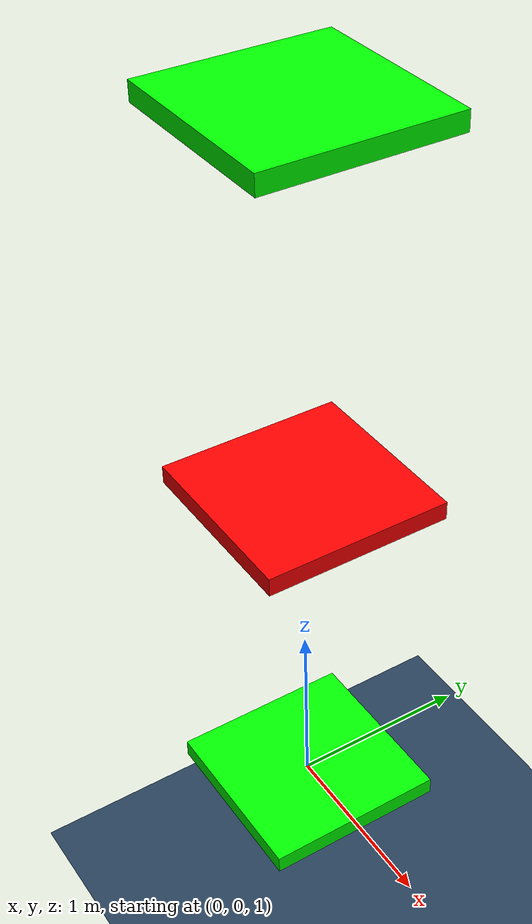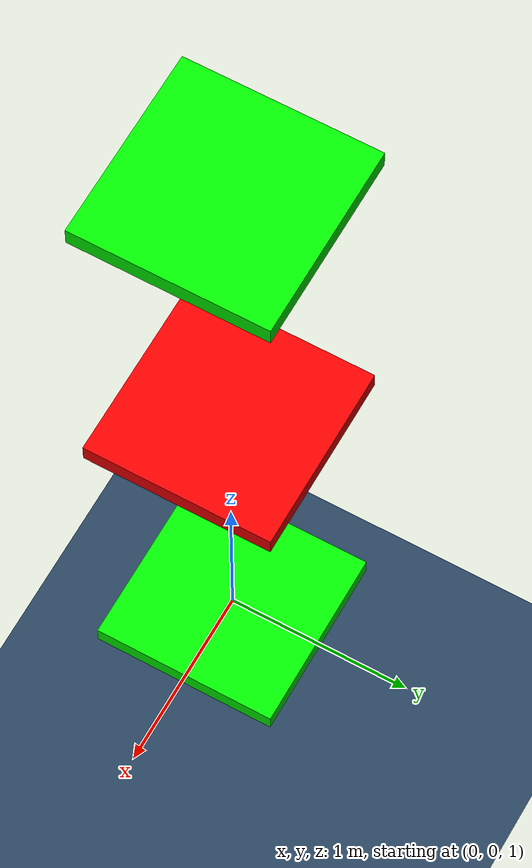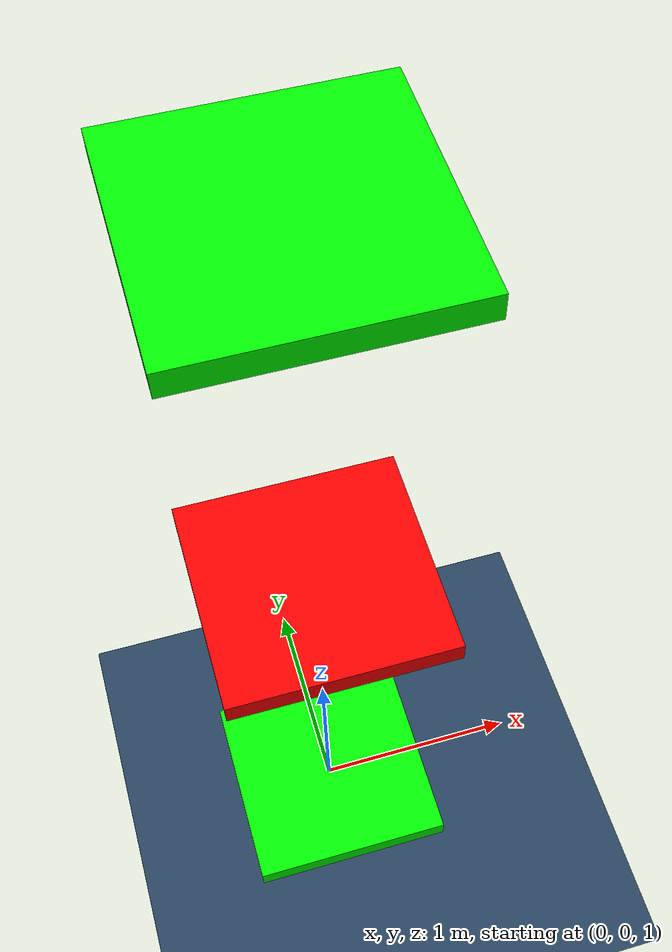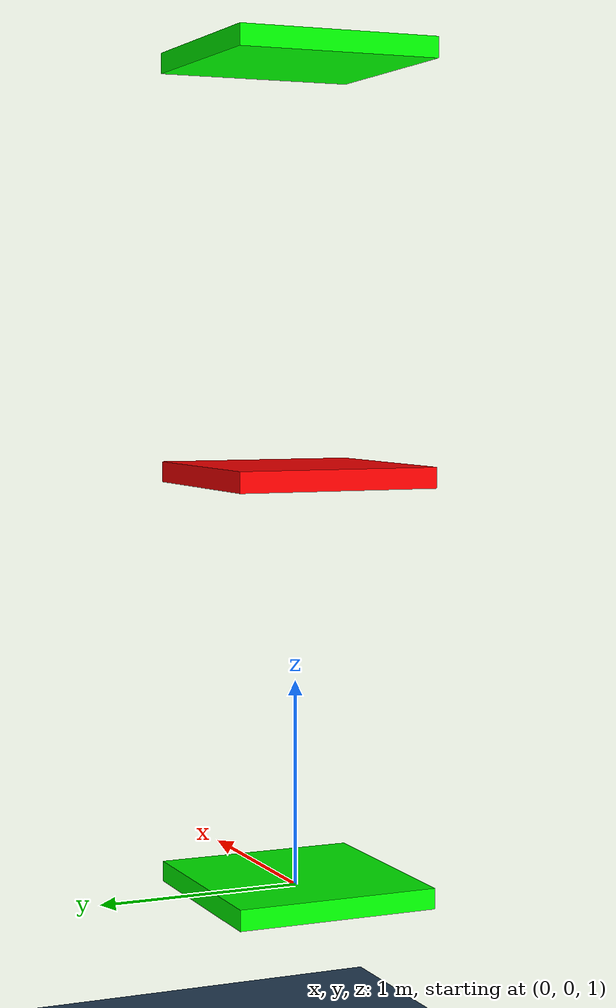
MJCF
<mujoco model="v2_4">
  <compiler angle="radian"/>

  <default>
    <geom density="1000"/>
  </default>

  <asset>
    <texture name="grid" type="2d" builtin="checker" rgb1=".1 .2 .3"
      rgb2=".2 .3 .4" width="300" height="300"/>
    <material name="grid" texture="grid" texrepeat="8 8" reflectance=".2"/>

    <mesh name="base_link" file="base_link.STL"/>
    <mesh name="LF_Thigh" file="LF_Thigh.STL"/>
    <mesh name="LF_Calf" file="LF_Calf.STL"/>
    <mesh name="RF_Thigh" file="RF_Thigh.STL"/>
    <mesh name="RF_Calf" file="RF_Calf.STL"/>
    <mesh name="LB_Thigh" file="LB_Thigh.STL"/>
    <mesh name="LB_Calf" file="LB_Calf.STL"/>
    <mesh name="RB_Thigh" file="RB_Thigh.STL"/>
    <mesh name="RB_Calf" file="RB_Calf.STL"/>
    <mesh name="LF_MAA_UPLink" file="LF_MAA_UPLink.STL"/>
    <mesh name="LF_MAA_FM_Link" file="LF_MAA_FM_Link.STL"/>
    <mesh name="LF_MAA_LOLink" file="LF_MAA_LOLink.STL"/>
    <mesh name="RF_MAA_UPLink" file="RF_MAA_UPLink.STL"/>
    <mesh name="RF_MAA_FM_Link" file="RF_MAA_FM_Link.STL"/>
    <mesh name="RF_MAA_LOLink" file="RF_MAA_LOLink.STL"/>
    <mesh name="LB_MAA_UPLink" file="LB_MAA_UPLink.STL"/>
    <mesh name="LB_MAA_FM_Link" file="LB_MAA_FM_Link.STL"/>
    <mesh name="LB_MAA_LOLink" file="LB_MAA_LOLink.STL"/>
    <mesh name="RB_MAA_UPLink" file="RB_MAA_UPLink.STL"/>
    <mesh name="RB_MAA_FM_Link" file="RB_MAA_FM_Link.STL"/>
    <mesh name="RB_MAA_LOLink" file="RB_MAA_LOLink.STL"/>
    <mesh name="LF_BAA_UPLink" file="LF_BAA_UPLink.STL"/>
    <mesh name="LF_BAA_FM_Link" file="LF_BAA_FM_Link.STL"/>
    <mesh name="LF_BAA_LOLink" file="LF_BAA_LOLink.STL"/>
    <mesh name="RF_BAA_UPLink" file="RF_BAA_UPLink.STL"/>
    <mesh name="RF_BAA_FM_Link" file="RF_BAA_FM_Link.STL"/>
    <mesh name="RF_BAA_LOLink" file="RF_BAA_LOLink.STL"/>
    <mesh name="LB_BAA_UPLink" file="LB_BAA_UPLink.STL"/>
    <mesh name="LB_BAA_FM_Link" file="LB_BAA_FM_Link.STL"/>
    <mesh name="LB_BAA_LOLink" file="LB_BAA_LOLink.STL"/>
    <mesh name="RB_BAA_UPLink" file="RB_BAA_UPLink.STL"/>
    <mesh name="RB_BAA_FM_LINK" file="RB_BAA_FM_LINK.STL"/>
    <mesh name="RB_BAA_LOLink" file="RB_BAA_LOLink.STL"/>
  </asset>

  <worldbody>
    <light name="top" pos="0 0 10"/>
    <body name="base" pos="0 0 0">
      <geom size="10 10 .01" type="plane" material="grid"/>
      <body name="base box" pos="0 0 1">
        <geom type="box" size="0.5 0.5 0.05" rgba="0 1 0 1"/>
        <body name="floating mass" pos="0 0 2">
          <geom type="box" size="0.5 0.5 0.05" rgba="1 0 0 1"/>
          <joint name="j1" type="slide" axis="0 0 1" damping="10" stiffness="2000" springref="0"/>
          <body name="end box" pos="0 0 2">
            <geom type="box" size="0.5 0.5 0.05" rgba="0 1 0 1"/>
            <joint name="j2" type="slide" axis="0 0 1" damping="10" stiffness="2000" springref="0"/>
          </body>
        </body>
      </body>
    </body>
  </worldbody>

  <!-- 增加在RB_BAA_LowerJoint等关节中加入8个位置控制器，要求增加位置限制 -->
  <actuator>

    <general joint="j1" ctrllimited="true" ctrlrange="-156 156" />
    <general joint="j2" ctrllimited="true" ctrlrange="-78 78" />

  </actuator>

  <!-- 建立并联关系，如 RB_BAA_LOLink 应该与 RB_Calf 连接 -->
  <equality>

    <!-- FM 的相等约束 -->
  </equality>

  <!-- sensor -->
  <sensor>
  </sensor>

</mujoco>
